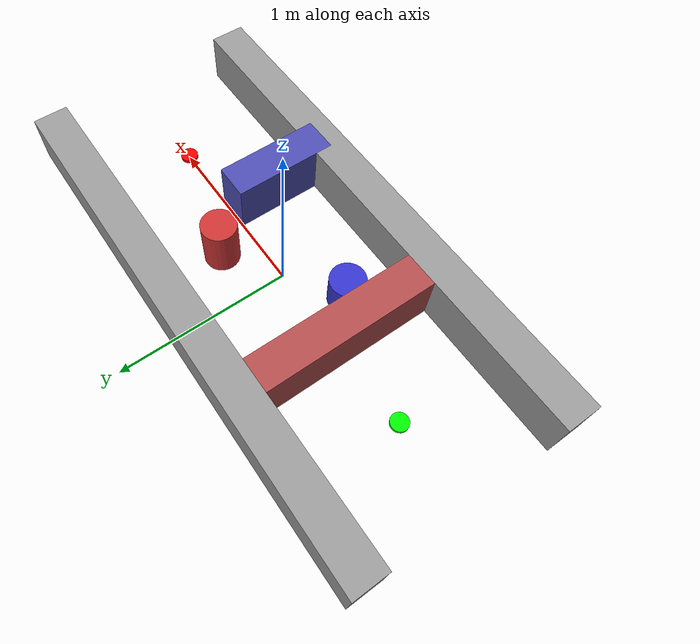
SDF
<sdf version="1.6">
 <world name="dynamic_navigation_world">
  <model name="start_marker">
   <static>true</static>
   <pose>-1 0 0.02 0 0 0</pose>
   <link name="link">
    <visual name="visual">
     <geometry><cylinder><radius>0.05</radius><length>0.02</length></cylinder></geometry>
     <material><diffuse>0 1 0 1</diffuse></material>
    </visual>
   </link>
  </model>
  <model name="goal_marker">
   <static>true</static>
   <pose>1 0 0.02 0 0 0</pose>
   <link name="link">
    <visual name="visual">
     <geometry><cylinder><radius>0.05</radius><length>0.02</length></cylinder></geometry>
     <material><diffuse>1 0 0 1</diffuse></material>
    </visual>
   </link>
  </model>
  <model name="wall_left">
   <static>true</static>
   <pose>0 0.6 0.15 0 0 0</pose>
   <link name="link">
    <collision name="collision"><geometry><box><size>3.0 0.2 0.3</size></box></geometry></collision>
    <visual name="visual">
     <geometry><box><size>3.0 0.2 0.3</size></box></geometry>
     <material><diffuse>0.6 0.6 0.6 1</diffuse></material>
    </visual>
   </link>
  </model>
  <model name="wall_right">
   <static>true</static>
   <pose>0 -0.6 0.15 0 0 0</pose>
   <link name="link">
    <collision name="collision"><geometry><box><size>3.0 0.2 0.3</size></box></geometry></collision>
    <visual name="visual">
     <geometry><box><size>3.0 0.2 0.3</size></box></geometry>
     <material><diffuse>0.6 0.6 0.6 1</diffuse></material>
    </visual>
   </link>
  </model>
  <model name="wall_1">
   <static>true</static>
   <pose>-0.5 0 0.15 0 0 0</pose>
   <link name="link">
    <collision name="collision"><geometry><box><size>0.2 1.0 0.3</size></box></geometry></collision>
    <visual name="visual">
     <geometry><box><size>0.2 1.0 0.3</size></box></geometry>
     <material><diffuse>0.7 0.3 0.3 1</diffuse></material>
    </visual>
   </link>
  </model>
  <model name="wall_2">
   <static>true</static>
   <pose>0.5 -0.3 0.15 0 0 0</pose>
   <link name="link">
    <collision name="collision"><geometry><box><size>0.2 0.6 0.3</size></box></geometry></collision>
    <visual name="visual">
     <geometry><box><size>0.2 0.6 0.3</size></box></geometry>
     <material><diffuse>0.3 0.3 0.7 1</diffuse></material>
    </visual>
   </link>
  </model>
  <model name="cylinder_1">
   <pose>0.3 0.2 0.15 0 0 0</pose>
   <link name="link">
    <collision name="collision">
     <geometry><cylinder><radius>0.1</radius><length>0.3</length></cylinder></geometry>
    </collision>
    <visual name="visual">
     <geometry><cylinder><radius>0.1</radius><length>0.3</length></cylinder></geometry>
     <material><diffuse>0.8 0.2 0.2 1</diffuse></material>
    </visual>
   </link>
  </model>
  <model name="cylinder_2">
   <pose>-0.3 -0.2 0.1 0 0 0</pose>
   <link name="link">
    <collision name="collision">
     <geometry><cylinder><radius>0.1</radius><length>0.2</length></cylinder></geometry>
    </collision>
    <visual name="visual">
     <geometry><cylinder><radius>0.1</radius><length>0.2</length></cylinder></geometry>
     <material><diffuse>0.2 0.2 0.8 1</diffuse></material>
    </visual>
   </link>
  </model>
 </world>
</sdf>
